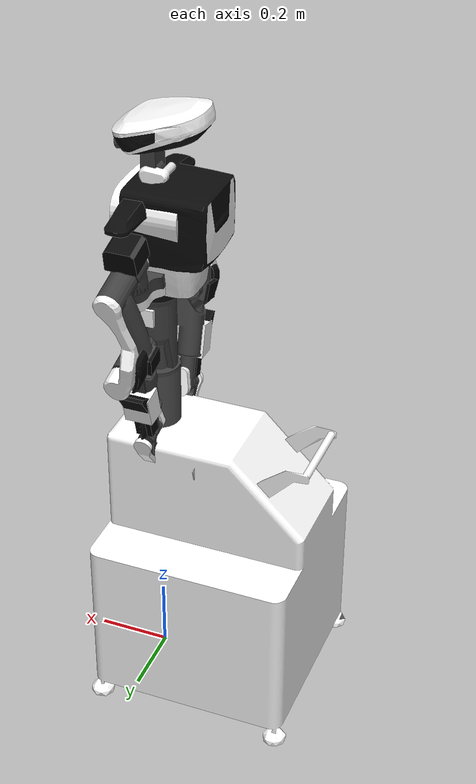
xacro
<?xml version="1.0"?>
<robot name="NextageOpen" xmlns:xacro="http://www.ros.org/wiki/xacro">

  <xacro:include filename="$(find nextage_description)/urdf/NextageOpen.urdf" />

  <link name="odom" />
  <joint name="odom_to_WAIST" type="fixed">
    <origin rpy="0 0 0" xyz="0 0.0 0.97" />
    <parent link="odom" />
    <child link="WAIST" />
  </joint>

  <!-- based on fetch_description/robots/fetch.urdf   -->
  <!--          nextage_description/urdf/nxo_gz.xacro -->

  <link name="head_camera_rgb_frame" />
  <joint name="head_camera_rgb_joint" type="fixed">
    <origin rpy="0 0.25 0" xyz="0.0175 0.02 0.105" />
    <parent link="HEAD_JOINT1_Link" />
    <child link="head_camera_rgb_frame" />
  </joint>
  <link name="head_camera_rgb_optical_frame" />
  <joint name="head_camera_rgb_optical_joint" type="fixed">
    <origin rpy="-1.57079632679 0 -1.57079632679" xyz="0 0 0" />
    <parent link="head_camera_rgb_frame" />
    <child link="head_camera_rgb_optical_frame" />
  </joint>
  <link name="head_camera_depth_frame" />
  <joint name="head_camera_depth_joint" type="fixed">
    <origin rpy="0 0.25 0" xyz="0.0175 0.045 0.105" />
    <parent link="HEAD_JOINT1_Link" />
    <child link="head_camera_depth_frame" />
  </joint>
  <link name="head_camera_depth_optical_frame" />
  <joint name="head_camera_depth_optical_joint" type="fixed">
    <origin rpy="-1.57079632679 0 -1.57079632679" xyz="0 0 0" />
    <parent link="head_camera_depth_frame" />
    <child link="head_camera_depth_optical_frame" />
  </joint>

  <!-- copied from fetch_gazebo/robots/fetch.gazebo.xacro -->

  <!-- Primesense Carmine 1.09 -->
  <gazebo reference="head_camera_rgb_frame">
    <sensor type="depth" name="camera">
      <always_on>true</always_on>
      <update_rate>15.0</update_rate>
      <camera>
        <horizontal_fov>1.047197</horizontal_fov>
        <image>
          <!-- openni_kinect plugin works only with BGR8 -->
          <format>B8G8R8</format>
          <width>640</width>
          <height>480</height>
        </image>
        <clip>
          <near>0.05</near>
          <far>50</far>
        </clip>
      </camera>
      <plugin name="head_camera_controller" filename="libgazebo_ros_openni_kinect.so">
        <baseline>0.1</baseline>
        <alwaysOn>true</alwaysOn>
        <updateRate>15.0</updateRate>
        <cameraName>head_camera</cameraName>
        <imageTopicName>/head_camera/rgb/image_raw</imageTopicName>
        <cameraInfoTopicName>/head_camera/rgb/camera_info</cameraInfoTopicName>
        <depthImageTopicName>/head_camera/depth_registered/image_raw</depthImageTopicName>
        <depthImageCameraInfoTopicName>/head_camera/depth_registered/camera_info</depthImageCameraInfoTopicName>
        <pointCloudTopicName>/head_camera/depth_registered/points</pointCloudTopicName>
        <frameName>head_camera_rgb_optical_frame</frameName>
        <pointCloudCutoff>0.35</pointCloudCutoff>
        <pointCloudCutoffMax>4.5</pointCloudCutoffMax>
        <CxPrime>0</CxPrime>
        <Cx>0</Cx>
        <Cy>0</Cy>
        <focalLength>0</focalLength>
        <hackBaseline>0</hackBaseline>
      </plugin>
    </sensor>
  </gazebo>
</robot>

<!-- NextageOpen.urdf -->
<robot name="NextageOpen"
       xmlns:xi="http://www.w3.org/2001/XInclude"
       xmlns:gazebo="http://playerstage.sourceforge.net/gazebo/xmlschema/#gz"
       xmlns:model="http://playerstage.sourceforge.net/gazebo/xmlschema/#model"
       xmlns:sensor="http://playerstage.sourceforge.net/gazebo/xmlschema/#sensor"
       xmlns:body="http://playerstage.sourceforge.net/gazebo/xmlschema/#body"
       xmlns:geom="http://playerstage.sourceforge.net/gazebo/xmlschema/#geom"
       xmlns:joint="http://playerstage.sourceforge.net/gazebo/xmlschema/#joint"
       xmlns:interface="http://playerstage.sourceforge.net/gazebo/xmlschema/#interface"
       xmlns:rendering="http://playerstage.sourceforge.net/gazebo/xmlschema/#rendering"
       xmlns:renderable="http://playerstage.sourceforge.net/gazebo/xmlschema/#renderable"
       xmlns:controller="http://playerstage.sourceforge.net/gazebo/xmlschema/#controller"
       xmlns:physics="http://playerstage.sourceforge.net/gazebo/xmlschema/#physics"
       xmlns:xacro="http://www.ros.org/wiki/xacro">
  <xacro:include filename="$(find nextage_description)/urdf/materials.urdf.xacro" />

  <xacro:macro name="gazebo_nx_link" params="name color">
    <gazebo reference="gazebo_${name}">
      <material>Gazebo/${color}</material>
    </gazebo>
  </xacro:macro>

  <xacro:macro name="transmission_nx_joint" params="name">
    <transmission name="${name}_Trans">
      <type>transmission_interface/SimpleTransmission</type>
      <joint name="${name}">
        <hardwareInterface>EffortJointInterface</hardwareInterface>
      </joint>
      <actuator name="${name}_Motor">
        <hardwareInterface>EffortJointInterface</hardwareInterface>
        <mechanicalReduction>1</mechanicalReduction>
      </actuator>
    </transmission>
  </xacro:macro>

  <xacro:gazebo_nx_link name="WAIST" color="Black" />
  <link name="WAIST">
    <visual>
      <origin xyz="0 0 0.97" rpy="0 -0 0"/>
      <geometry>
        <mesh filename="package://nextage_description/urdf/meshes/WAIST_Link_mesh.dae" scale="1 1 1" />
      </geometry>
    </visual>
    <collision>
      <origin xyz="0 0 0.97" rpy="0 -0 0"/>
      <geometry>
        <mesh filename="package://nextage_description/urdf/meshes/WAIST_Link_mesh.dae" scale="1 1 1" />
      </geometry>
    </collision>
    <inertial>
      <mass value="1000" />
      <origin xyz="0 0 0" rpy="0 -0 0"/>
      <inertia ixx="20" ixy="0" ixz="0" iyy="20" iyz="0" izz="20"/>
    </inertial>
  </link>

  <xacro:gazebo_nx_link name="CHEST_JOINT0_Link" color="Black" />
  <link name="CHEST_JOINT0_Link">
    <visual>
      <origin xyz="0 0 0" rpy="0 -0 0"/>
      <geometry>
        <mesh filename="package://nextage_description/urdf/meshes/CHEST_JOINT0_Link_mesh.dae" scale="1 1 1" />
      </geometry>
    </visual>
    <collision>
      <origin xyz="0 0 0" rpy="0 -0 0"/>
      <geometry>
        <mesh filename="package://nextage_description/urdf/meshes/CHEST_JOINT0_Link_mesh.dae" scale="1 1 1" />
      </geometry>
    </collision>
    <inertial>
      <mass value="3.0" />
      <origin xyz="0 0 0" rpy="0 -0 0"/>
      <inertia ixx="0.0639575" ixy="-0.00022833" ixz="0.00011172" iyy="0.0310845" iyz="6.48e-05" izz="0.0501107"/>
    </inertial>
  </link>

  <xacro:gazebo_nx_link name="HEAD_JOINT0_Link" color="Black" />
  <link name="HEAD_JOINT0_Link">
    <visual>
      <origin xyz="0 0 0.5695" rpy="0 -0 0"/>
      <geometry>
        <mesh filename="package://nextage_description/urdf/meshes/HEAD_JOINT0_Link_mesh.dae" scale="1 1 1" />
      </geometry>
    </visual>
    <collision>
      <origin xyz="0 0 0.5695" rpy="0 -0 0"/>
      <geometry>
        <mesh filename="package://nextage_description/urdf/meshes/HEAD_JOINT0_Link_mesh.dae" scale="1 1 1" />
      </geometry>
    </collision>
    <inertial>
      <mass value="0.317929" />
      <origin xyz="-2.292e-05 0.00547848 -0.00784016" rpy="0 -0 0"/>
      <inertia ixx="0.00027682" ixy="3e-08" ixz="-3.3e-07" iyy="0.00013009" iyz="-1.092e-05" izz="0.00020954"/>
    </inertial>
  </link>

  <xacro:gazebo_nx_link name="HEAD_JOINT1_Link" color="Black" />
  <link name="HEAD_JOINT1_Link">
    <visual>
      <origin xyz="0 0 0" rpy="0 -0 0"/>
      <geometry>
        <mesh filename="package://nextage_description/urdf/meshes/HEAD_JOINT1_Link_mesh.dae" scale="1 1 1" />
      </geometry>
    </visual>
    <collision>
      <origin xyz="0 0 0" rpy="0 -0 0"/>
      <geometry>
        <mesh filename="package://nextage_description/urdf/meshes/HEAD_JOINT1_Link_mesh.dae" scale="1 1 1" />
      </geometry>
    </collision>
    <inertial>
      <mass value="0.0808593" />
      <inertia ixx="1e-3" ixy="0" ixz="0" iyy="1e-3" iyz="0" izz="1e-3"/>
    </inertial>
  </link>

  <xacro:gazebo_nx_link name="LARM_JOINT0_Link" color="Black" />
  <link name="LARM_JOINT0_Link">
    <visual>
      <origin xyz="0 0.145 0.370296" rpy="-0.261799 0 0"/>
      <geometry>
        <mesh filename="package://nextage_description/urdf/meshes/LARM_JOINT0_Link_mesh.dae" scale="1 1 1" />
      </geometry>
    </visual>
    <collision>
      <origin xyz="0 0.145 0.370296" rpy="-0.261799 0 0"/>
      <geometry>
        <mesh filename="package://nextage_description/urdf/meshes/LARM_JOINT0_Link_mesh.dae" scale="1 1 1" />
      </geometry>
    </collision>
    <inertial>
      <mass value="1.32626" />
      <origin xyz="-0.00226388 -0.00521383 0.0156081" rpy="0 -0 0"/>
      <inertia ixx="0.00207537" ixy="0.00011276" ixz="8.927e-05" iyy="0.00240295" iyz="-4.57e-05" izz="0.00141912"/>
    </inertial>
  </link>
  <xacro:gazebo_nx_link name="LARM_JOINT1_Link" color="Black" />
  <link name="LARM_JOINT1_Link">
    <visual>
      <origin xyz="0 0 0" rpy="0 -0 0"/>
      <geometry>
        <mesh filename="package://nextage_description/urdf/meshes/LARM_JOINT1_Link_mesh.dae" scale="1 1 1" />
      </geometry>
    </visual>
    <collision>
      <origin xyz="0 0 0" rpy="0 -0 0"/>
      <geometry>
        <mesh filename="package://nextage_description/urdf/meshes/LARM_JOINT1_Link_mesh.dae" scale="1 1 1" />
      </geometry>
    </collision>
    <inertial>
      <mass value="1.14898" />
      <origin xyz="-5.236e-05 0.0583134 -0.107061" rpy="0 -0 0"/>
      <inertia ixx="0.0154168" ixy="9.95417e-07" ixz="3.38147e-06" iyy="0.0147117" iyz="0.00213719" izz="0.0012658"/>
    </inertial>
  </link>
  <xacro:gazebo_nx_link name="LARM_JOINT2_Link" color="Black" />
  <link name="LARM_JOINT2_Link">
    <visual>
      <origin xyz="0 0.095 -0.25" rpy="0 -0 0"/>
      <geometry>
        <mesh filename="package://nextage_description/urdf/meshes/LARM_JOINT2_Link_mesh.dae" scale="1 1 1" />
      </geometry>
    </visual>
    <collision>
      <origin xyz="0 0.095 -0.25" rpy="0 -0 0"/>
      <geometry>
        <mesh filename="package://nextage_description/urdf/meshes/LARM_JOINT2_Link_mesh.dae" scale="1 1 1" />
      </geometry>
    </collision>
    <inertial>
      <mass value="0.577518" />
      <origin xyz="-2.254e-05 0.00167107 -0.0715116" rpy="0 -0 0"/>
      <inertia ixx="0.00143966" ixy="-3e-07" ixz="1.2e-06" iyy="0.00141763" iyz="-7.596e-05" izz="0.0001972"/>
    </inertial>
  </link>
  <xacro:gazebo_nx_link name="LARM_JOINT3_Link" color="Black" />
  <link name="LARM_JOINT3_Link">
    <visual>
      <origin xyz="-0.03 0 0" rpy="0 -0 0"/>
      <geometry>
        <mesh filename="package://nextage_description/urdf/meshes/LARM_JOINT3_Link_mesh.dae" scale="1 1 1" />
      </geometry>
    </visual>
    <collision>
      <origin xyz="-0.03 0 0" rpy="0 -0 0"/>
      <geometry>
        <mesh filename="package://nextage_description/urdf/meshes/LARM_JOINT3_Link_mesh.dae" scale="1 1 1" />
      </geometry>
    </collision>
    <inertial>
      <mass value="0.457418" />
      <origin xyz="-1.788e-05 -0.00395812 -0.20273" rpy="0 -0 0"/>
      <inertia ixx="0.00069205" ixy="3e-08" ixz="5.2e-07" iyy="0.00068903" iyz="-1.915e-05" izz="0.00013509"/>
    </inertial>
  </link>
  <xacro:gazebo_nx_link name="LARM_JOINT4_Link" color="Black" />
  <link name="LARM_JOINT4_Link">
    <visual>
      <origin xyz="0 0 -0.235" rpy="0 -0 0"/>
      <geometry>
        <mesh filename="package://nextage_description/urdf/meshes/LARM_JOINT4_Link_mesh.dae" scale="1 1 1" />
      </geometry>
    </visual>
    <collision>
      <origin xyz="0 0 -0.235" rpy="0 -0 0"/>
      <geometry>
        <mesh filename="package://nextage_description/urdf/meshes/LARM_JOINT4_Link_mesh.dae" scale="1 1 1" />
      </geometry>
    </collision>
    <inertial>
      <mass value="0.418434" />
      <origin xyz="0.00243131 0.00379733 -0.0577036" rpy="0 -0 0"/>
      <inertia ixx="0.00052016" ixy="1.69e-06" ixz="7.9e-06" iyy="0.00050569" iyz="-5.377e-05" izz="0.00014004"/>
    </inertial>
  </link>
  <xacro:gazebo_nx_link name="LARM_JOINT5_Link" color="Black" />
  <link name="LARM_JOINT5_Link">
    <visual>
      <origin xyz="-0.047 0 -0.09" rpy="0 -0 0"/>
      <geometry>
        <mesh filename="package://nextage_description/urdf/meshes/LARM_JOINT5_Link_mesh.dae" scale="1 1 1" />
      </geometry>
    </visual>
    <collision>
      <origin xyz="-0.047 0 -0.09" rpy="0 -0 0"/>
      <geometry>
        <mesh filename="package://nextage_description/urdf/meshes/LARM_JOINT5_Link_mesh.dae" scale="1 1 1" />
      </geometry>
    </collision>
    <inertial>
      <mass value="1.05156" />
      <origin xyz="-0.048476 -3.2e-06 -0.0388988" rpy="0 -0 0"/>
      <inertia ixx="0.00194072" ixy="1.1e-07" ixz="-0.00042482" iyy="0.00209392" iyz="1.2e-07" izz="0.00035788"/>
    </inertial>
  </link>
  <xacro:gazebo_nx_link name="RARM_JOINT0_Link" color="Black" />
  <link name="RARM_JOINT0_Link">
    <visual>
      <origin xyz="0 -0.145 0.370296" rpy="0.261799 -0 0"/>
      <geometry>
        <mesh filename="package://nextage_description/urdf/meshes/RARM_JOINT0_Link_mesh.dae" scale="1 1 1" />
      </geometry>
    </visual>
    <collision>
      <origin xyz="0 -0.145 0.370296" rpy="0.261799 -0 0"/>
      <geometry>
        <mesh filename="package://nextage_description/urdf/meshes/RARM_JOINT0_Link_mesh.dae" scale="1 1 1" />
      </geometry>
    </collision>
    <inertial>
      <mass value="1.32626" />
      <origin xyz="-0.00226388 0.00521383 0.0156081" rpy="0 -0 0"/>
      <inertia ixx="0.00207537" ixy="-0.00011276" ixz="8.927e-05" iyy="0.00240295" iyz="4.57e-05" izz="0.00141912"/>
    </inertial>
  </link>
  <xacro:gazebo_nx_link name="RARM_JOINT1_Link" color="Black" />
  <link name="RARM_JOINT1_Link">
    <visual>
      <origin xyz="0 0 0" rpy="0 -0 0"/>
      <geometry>
        <mesh filename="package://nextage_description/urdf/meshes/RARM_JOINT1_Link_mesh.dae" scale="1 1 1" />
      </geometry>
    </visual>
    <collision>
      <origin xyz="0 0 0" rpy="0 -0 0"/>
      <geometry>
        <mesh filename="package://nextage_description/urdf/meshes/RARM_JOINT1_Link_mesh.dae" scale="1 1 1" />
      </geometry>
    </collision>
    <inertial>
      <mass value="1.14898" />
      <origin xyz="-5.236e-05 -0.0583134 -0.107061" rpy="0 -0 0"/>
      <inertia ixx="0.0154168" ixy="-9.95417e-07" ixz="3.38147e-06" iyy="0.0147117" iyz="-0.00213719" izz="0.0012658"/>
    </inertial>
  </link>
  <xacro:gazebo_nx_link name="RARM_JOINT2_Link" color="Black" />
  <link name="RARM_JOINT2_Link">
    <visual>
      <origin xyz="0 -0.095 -0.25" rpy="0 -0 0"/>
      <geometry>
        <mesh filename="package://nextage_description/urdf/meshes/RARM_JOINT2_Link_mesh.dae" scale="1 1 1" />
      </geometry>
    </visual>
    <collision>
      <origin xyz="0 -0.095 -0.25" rpy="0 -0 0"/>
      <geometry>
        <mesh filename="package://nextage_description/urdf/meshes/RARM_JOINT2_Link_mesh.dae" scale="1 1 1" />
      </geometry>
    </collision>
    <inertial>
      <mass value="0.577518" />
      <origin xyz="-2.254e-05 -0.00167107 -0.0715116" rpy="0 -0 0"/>
      <inertia ixx="0.00143966" ixy="3e-07" ixz="1.2e-06" iyy="0.00141763" iyz="7.596e-05" izz="0.0001972"/>
    </inertial>
  </link>
  <xacro:gazebo_nx_link name="RARM_JOINT4_Link" color="Black" />
  <link name="RARM_JOINT3_Link">
    <visual>
      <origin xyz="-0.03 0 0" rpy="0 -0 0"/>
      <geometry>
        <mesh filename="package://nextage_description/urdf/meshes/RARM_JOINT3_Link_mesh.dae" scale="1 1 1" />
      </geometry>
    </visual>
    <collision>
      <origin xyz="-0.03 0 0" rpy="0 -0 0"/>
      <geometry>
        <mesh filename="package://nextage_description/urdf/meshes/RARM_JOINT3_Link_mesh.dae" scale="1 1 1" />
      </geometry>
    </collision>
    <inertial>
      <mass value="0.457418" />
      <origin xyz="-1.788e-05 0.00395812 -0.20273" rpy="0 -0 0"/>
      <inertia ixx="0.00069205" ixy="-3e-08" ixz="5.2e-07" iyy="0.00068903" iyz="1.915e-05" izz="0.00013509"/>
    </inertial>
  </link>
  <xacro:gazebo_nx_link name="RARM_JOINT4_Link" color="Black" />
  <link name="RARM_JOINT4_Link">
    <visual>
      <origin xyz="0 0 -0.235" rpy="0 -0 0"/>
      <geometry>
        <mesh filename="package://nextage_description/urdf/meshes/RARM_JOINT4_Link_mesh.dae" scale="1 1 1" />
      </geometry>
    </visual>
    <collision>
      <origin xyz="0 0 -0.235" rpy="0 -0 0"/>
      <geometry>
        <mesh filename="package://nextage_description/urdf/meshes/RARM_JOINT4_Link_mesh.dae" scale="1 1 1" />
      </geometry>
    </collision>
    <inertial>
      <mass value="0.418434" />
      <origin xyz="0.00243131 -0.00379733 -0.0577036" rpy="0 -0 0"/>
      <inertia ixx="0.00052016" ixy="-1.69e-06" ixz="7.9e-06" iyy="0.00050569" iyz="5.377e-05" izz="0.00014004"/>
    </inertial>
  </link>
  <xacro:gazebo_nx_link name="RARM_JOINT5_Link" color="Black" />
  <link name="RARM_JOINT5_Link">
    <visual>
      <origin xyz="-0.047 0 -0.09" rpy="0 -0 0"/>
      <geometry>
        <mesh filename="package://nextage_description/urdf/meshes/RARM_JOINT5_Link_mesh.dae" scale="1 1 1" />
      </geometry>
    </visual>
    <collision>
      <origin xyz="-0.047 0 -0.09" rpy="0 -0 0"/>
      <geometry>
        <mesh filename="package://nextage_description/urdf/meshes/RARM_JOINT5_Link_mesh.dae" scale="1 1 1" />
      </geometry>
    </collision>
    <inertial>
      <mass value="1.05156" />
      <origin xyz="-0.048476 3.2e-06 -0.0388988" rpy="0 -0 0"/>
      <inertia ixx="0.00194072" ixy="-1.1e-07" ixz="-0.00042482" iyy="0.00209392" iyz="-1.2e-07" izz="0.00035788"/>
    </inertial>
  </link>
  <xacro:transmission_nx_joint name="CHEST_JOINT0" />
  <joint name="CHEST_JOINT0" type="revolute">
    <parent link="WAIST"/>
    <child  link="CHEST_JOINT0_Link"/>
    <origin xyz="0 0 0" rpy="0 -0 0 "/>
    <axis   xyz="0 0 1"/>
    <limit lower="-2.84489" upper="2.84489" effort="100" velocity="0.5" />
    <dynamics damping="0.2" friction="0" />
  </joint>
  <xacro:transmission_nx_joint name="HEAD_JOINT0" />
  <joint name="HEAD_JOINT0" type="revolute">
    <parent link="CHEST_JOINT0_Link"/>
    <child  link="HEAD_JOINT0_Link"/>
    <origin xyz="0 0 0.5695" rpy="0 -0 0 "/>
    <axis   xyz="0 0 1"/>
    <limit lower="-1.22173" upper="1.22173" effort="100" velocity="0.5" />
    <dynamics damping="0.2" friction="0" />
  </joint>
  <xacro:transmission_nx_joint name="HEAD_JOINT1" />
  <joint name="HEAD_JOINT1" type="revolute">
    <parent link="HEAD_JOINT0_Link"/>
    <child  link="HEAD_JOINT1_Link"/>
    <origin xyz="0 0 0" rpy="0 -0 0 "/>
    <axis   xyz="0 1 0"/>
    <limit lower="-0.349066" upper="1.22173" effort="100" velocity="0.5" />
    <dynamics damping="0.2" friction="0" />
  </joint>
  <xacro:transmission_nx_joint name="LARM_JOINT0" />
  <joint name="LARM_JOINT0" type="revolute">
    <parent link="CHEST_JOINT0_Link"/>
    <child  link="LARM_JOINT0_Link"/>
    <origin xyz="0 0.145 0.370296" rpy="-0.261799 0 0 "/>
    <axis   xyz="0 0 1"/>
    <limit lower="-1.53589" upper="1.53589" effort="150" velocity="0.5" />
    <dynamics damping="0.2" friction="0" />
  </joint>
  <xacro:transmission_nx_joint name="LARM_JOINT1" />
  <joint name="LARM_JOINT1" type="revolute">
    <parent link="LARM_JOINT0_Link"/>
    <child  link="LARM_JOINT1_Link"/>
    <origin xyz="0 0 0" rpy="0 -0 0 "/>
    <axis   xyz="0 1 0"/>
    <limit lower="-2.44346" upper="1.0472" effort="200" velocity="0.5" />
    <dynamics damping="0.2" friction="0" />
  </joint>
  <xacro:transmission_nx_joint name="LARM_JOINT2" />
  <joint name="LARM_JOINT2" type="revolute">
    <parent link="LARM_JOINT1_Link"/>
    <child  link="LARM_JOINT2_Link"/>
    <origin xyz="0 0.095 -0.25" rpy="0 -0 0 "/>
    <axis   xyz="0 1 0"/>
    <limit lower="-2.75762" upper="0" effort="100" velocity="0.5" />
    <dynamics damping="0.2" friction="0" />
  </joint>
  <xacro:transmission_nx_joint name="LARM_JOINT3" />
  <joint name="LARM_JOINT3" type="revolute">
    <parent link="LARM_JOINT2_Link"/>
    <child  link="LARM_JOINT3_Link"/>
    <origin xyz="-0.03 0 0" rpy="0 -0 0 "/>
    <axis   xyz="0 0 1"/>
    <limit lower="-1.8326" upper="2.87979" effort="100" velocity="0.5" />
    <dynamics damping="0.2" friction="0" />
  </joint>
  <xacro:transmission_nx_joint name="LARM_JOINT4" />
  <joint name="LARM_JOINT4" type="revolute">
    <parent link="LARM_JOINT3_Link"/>
    <child  link="LARM_JOINT4_Link"/>
    <origin xyz="0 0 -0.235" rpy="0 -0 0 "/>
    <axis   xyz="0 1 0"/>
    <limit lower="-1.74533" upper="1.74533" effort="100" velocity="0.5" />
    <dynamics damping="0.2" friction="0" />
  </joint>
  <xacro:transmission_nx_joint name="LARM_JOINT5" />
  <joint name="LARM_JOINT5" type="revolute">
    <parent link="LARM_JOINT4_Link"/>
    <child  link="LARM_JOINT5_Link"/>
    <origin xyz="-0.047 0 -0.09" rpy="0 -0 0 "/>
    <axis   xyz="1 0 0"/>
    <limit lower="-2.84489" upper="2.84489" effort="100" velocity="0.5" />
    <dynamics damping="0.2" friction="0" />
  </joint>
  <xacro:transmission_nx_joint name="RARM_JOINT0" />
  <joint name="RARM_JOINT0" type="revolute">
    <parent link="CHEST_JOINT0_Link"/>
    <child  link="RARM_JOINT0_Link"/>
    <origin xyz="0 -0.145 0.370296" rpy="0.261799 -0 0 "/>
    <axis   xyz="0 0 1"/>
    <limit lower="-1.53589" upper="1.53589" effort="150" velocity="0.5" />
    <dynamics damping="0.2" friction="0" />
  </joint>
  <xacro:transmission_nx_joint name="RARM_JOINT1" />
  <joint name="RARM_JOINT1" type="revolute">
    <parent link="RARM_JOINT0_Link"/>
    <child  link="RARM_JOINT1_Link"/>
    <origin xyz="0 0 0" rpy="0 -0 0 "/>
    <axis   xyz="0 1 0"/>
    <limit lower="-2.44346" upper="1.0472" effort="200" velocity="0.5" />
    <dynamics damping="0.2" friction="0" />
  </joint>
  <xacro:transmission_nx_joint name="RARM_JOINT2" />
  <joint name="RARM_JOINT2" type="revolute">
    <parent link="RARM_JOINT1_Link"/>
    <child  link="RARM_JOINT2_Link"/>
    <origin xyz="0 -0.095 -0.25" rpy="0 -0 0 "/>
    <axis   xyz="0 1 0"/>
    <limit lower="-2.75762" upper="0" effort="100" velocity="0.5" />
    <dynamics damping="0.2" friction="0" />
  </joint>
  <xacro:transmission_nx_joint name="RARM_JOINT3" />
  <joint name="RARM_JOINT3" type="revolute">
    <parent link="RARM_JOINT2_Link"/>
    <child  link="RARM_JOINT3_Link"/>
    <origin xyz="-0.03 0 0" rpy="0 -0 0 "/>
    <axis   xyz="0 0 1"/>
    <limit lower="-2.87979" upper="1.8326" effort="100" velocity="0.5" />
    <dynamics damping="0.2" friction="0" />
  </joint>
  <xacro:transmission_nx_joint name="RARM_JOINT4" />
  <joint name="RARM_JOINT4" type="revolute">
    <parent link="RARM_JOINT3_Link"/>
    <child  link="RARM_JOINT4_Link"/>
    <origin xyz="0 0 -0.235" rpy="0 -0 0 "/>
    <axis   xyz="0 1 0"/>
    <limit lower="-1.74533" upper="1.74533" effort="100" velocity="0.5" />
    <dynamics damping="0.2" friction="0" />
  </joint>
  <xacro:transmission_nx_joint name="RARM_JOINT5" />
  <joint name="RARM_JOINT5" type="revolute">
    <parent link="RARM_JOINT4_Link"/>
    <child  link="RARM_JOINT5_Link"/>
    <origin xyz="-0.047 0 -0.09" rpy="0 -0 0 "/>
    <axis   xyz="1 0 0"/>
    <limit lower="-2.84489" upper="2.84489" effort="100" velocity="0.5" />
    <dynamics damping="0.2" friction="0" />
  </joint>

  <!-- Gazebo plugin for ROS Control -->
  <gazebo>
    <plugin name="gazebo_ros_control" filename="libgazebo_ros_control.so">
      <robotNamespace>/</robotNamespace>
      <robotSimType>gazebo_ros_control/DefaultRobotHWSim</robotSimType>
      <legacyModeNS>true</legacyModeNS>
    </plugin>
  </gazebo>

</robot>

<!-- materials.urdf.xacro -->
<robot>

    <material name="Black">
        <color rgba="0.0 0.0 0.0 1.0"/>
    </material>

    <material name="Blue">
        <color rgba="0.0 0.0 0.8 1.0"/>
    </material>

    <material name="Green">
        <color rgba="0.0 0.8 0.0 1.0"/>
    </material>

    <material name="LightGrey">
        <color rgba="0.6 0.6 0.6 1.0"/>
    </material>

    <material name="Grey">
        <color rgba="0.4 0.4 0.4 1.0"/>
    </material>

    <material name="DarkGrey">
        <color rgba="0.2 0.2 0.2 1.0"/>
    </material>

    <material name="Red">
        <color rgba="0.8 0.0 0.0 1.0"/>
    </material>

    <material name="White">
        <color rgba="1.0 1.0 1.0 1.0"/>
    </material>

</robot>
